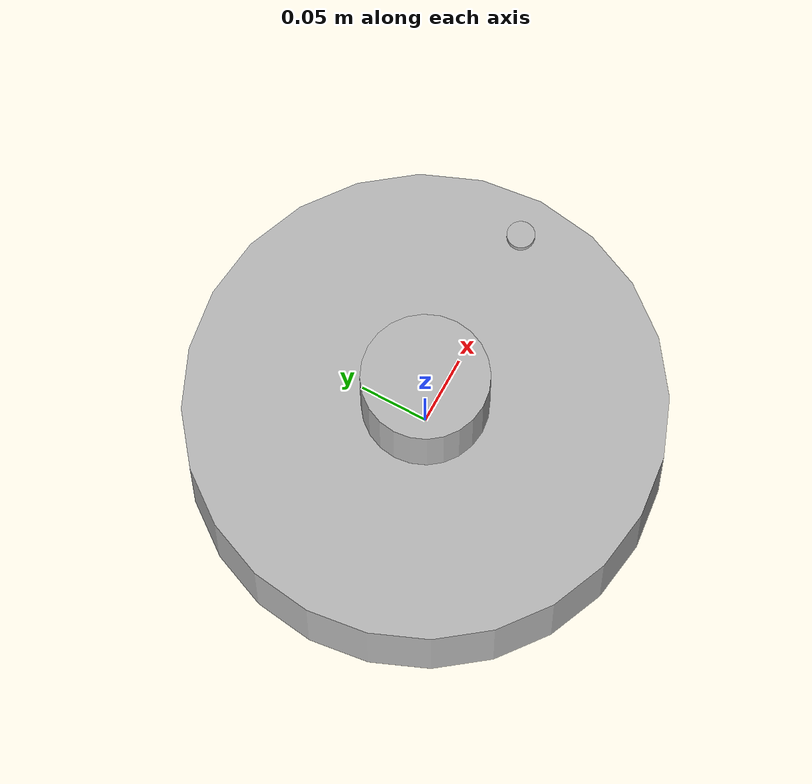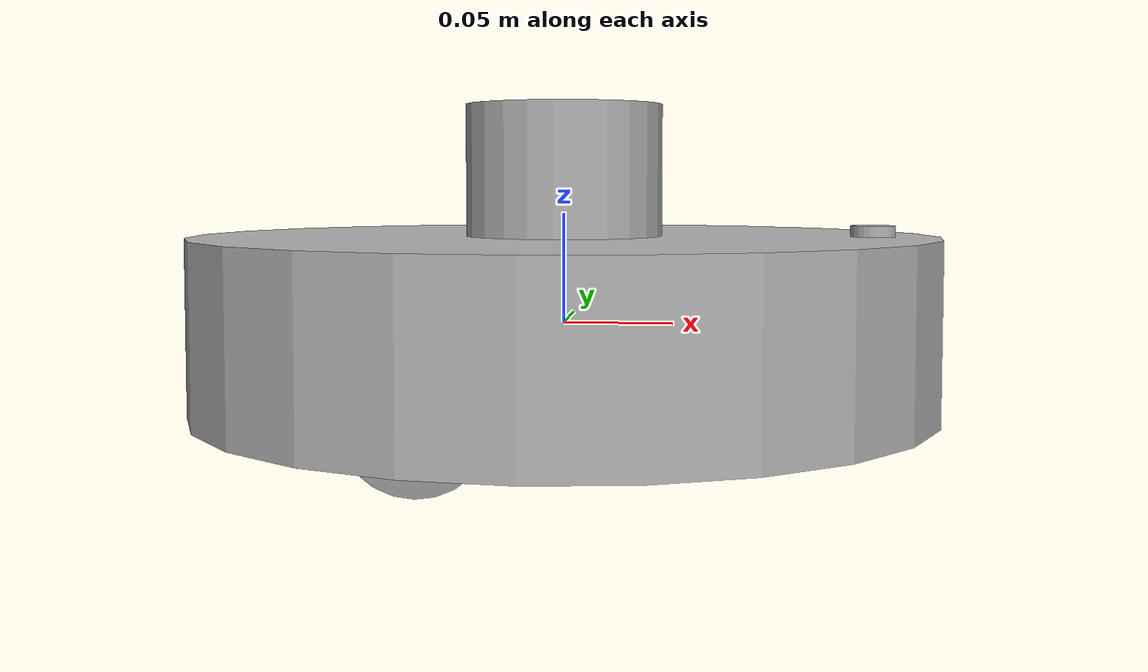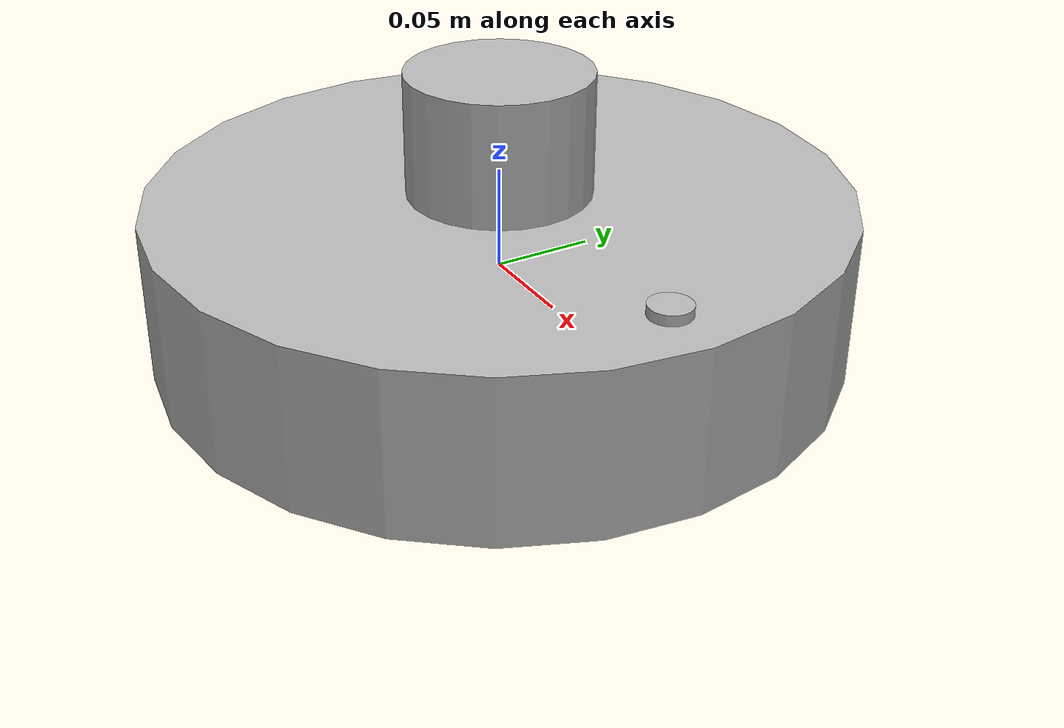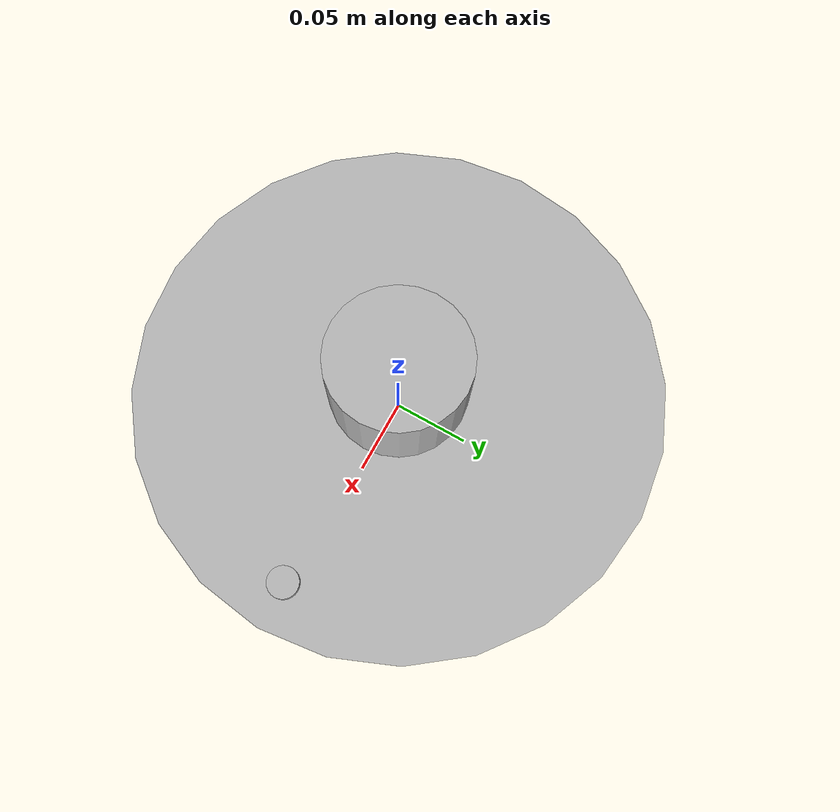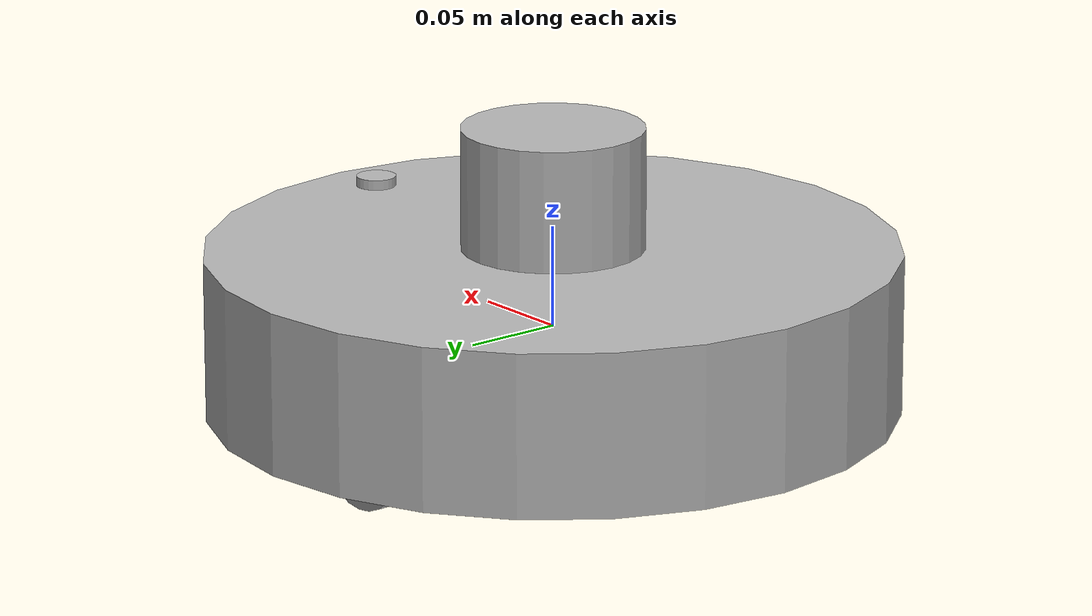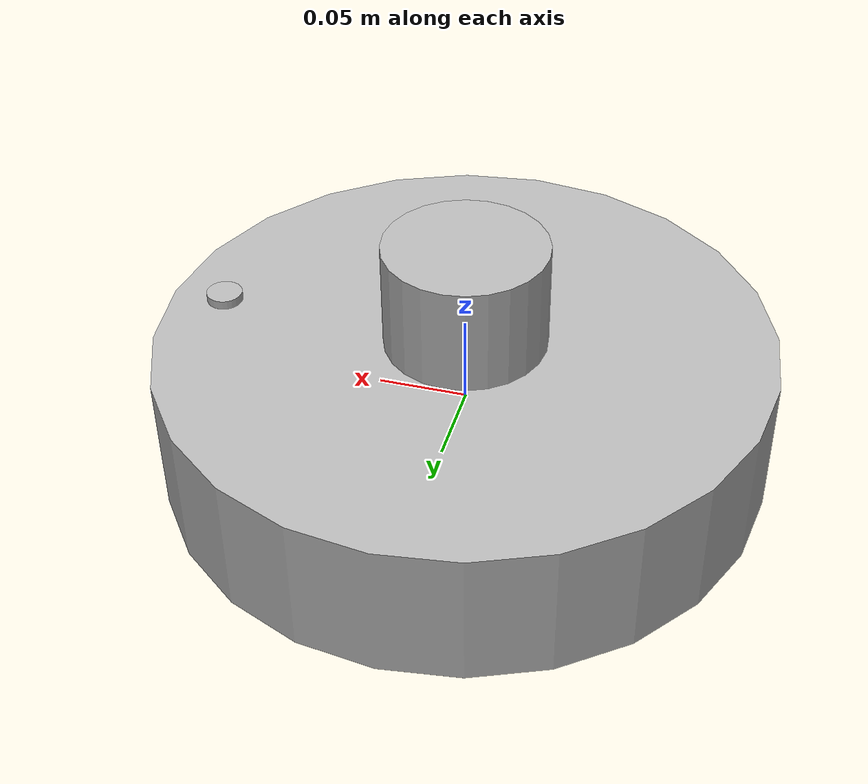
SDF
<sdf version='1.5'>
  <model name='iRobot'>
    <link name='base_link'>
      <pose>0 0 0 0 -0 0</pose>
      <inertial>
        <pose>5.99819e-06 0 4.9985e-08 0 -0 0</pose>
        <mass>10.003</mass>
        <inertia>
          <ixx>0.425054</ixx>
          <ixy>0</ixy>
          <ixz>-7.2e-06</ixz>
          <iyy>0.425037</iyy>
          <iyz>-4.08016e-18</iyz>
          <izz>0.850074</izz>
        </inertia>
      </inertial>
      <collision name='base_link_collision'>
        <pose>0 0 0 0 -0 0</pose>
        <geometry>
          <cylinder>
            <length>0.08</length>
            <radius>0.17</radius>
          </cylinder>
        </geometry>
      </collision>
      <collision name='base_link_collision_base_link_1'>
        <pose>0.14 0 0.04 0 -0 0</pose>
        <geometry>
          <cylinder>
            <length>0.01</length>
            <radius>0.01</radius>
          </cylinder>
        </geometry>
      </collision>
      <collision name='base_link_collision_base_link_2'>
        <pose>-0.04 0.14 -0.02 -1.5708 0 0</pose>
        <geometry>
          <cylinder>
            <length>0.02</length>
            <radius>0.0025</radius>
          </cylinder>
        </geometry>
      </collision>
      <collision name='base_link_collision_base_link_3'>
        <pose>-0.04 -0.14 -0.02 -1.5708 0 0</pose>
        <geometry>
          <cylinder>
            <length>0.02</length>
            <radius>0.0025</radius>
          </cylinder>
        </geometry>
      </collision>
      <collision name='base_link_collision_base_link_4'>
        <pose>0 0 0.05 0 -0 0</pose>
        <geometry>
          <box>
            <size>0.1 0.1 0.1</size>
          </box>
        </geometry>
      </collision>
      <visual name='base_link_visual'>
        <pose>0 0 0 0 -0 0</pose>
        <geometry>
          <cylinder>
            <length>0.08</length>
            <radius>0.17</radius>
          </cylinder>
        </geometry>
      </visual>
      <visual name='base_link_visual_base_link_1'>
        <pose>0.14 0 0.04 0 -0 0</pose>
        <geometry>
          <cylinder>
            <length>0.01</length>
            <radius>0.01</radius>
          </cylinder>
        </geometry>
      </visual>
      <visual name='base_link_visual_base_link_2'>
        <pose>-0.04 0.14 -0.02 -1.5708 0 0</pose>
        <geometry>
          <cylinder>
            <length>0.02</length>
            <radius>0.0025</radius>
          </cylinder>
        </geometry>
      </visual>
      <visual name='base_link_visual_base_link_3'>
        <pose>-0.04 -0.14 -0.02 -1.5708 0 0</pose>
        <geometry>
          <cylinder>
            <length>0.02</length>
            <radius>0.0025</radius>
          </cylinder>
        </geometry>
      </visual>
      <visual name='base_link_visual_base_link_4'>
        <pose>0 0 0.05 0 -0 0</pose>
        <geometry>
          <cylinder>
            <length>0.1</length>
            <radius>0.045</radius>
          </cylinder>
        </geometry>
      </visual>
      <velocity_decay/>
      <velocity_decay/>
      <gravity>1</gravity>
      <gravity>1</gravity>
      <velocity_decay/>
      <self_collide>0</self_collide>
      <sensor name='head_hokuyo_sensor' type='ray'>
        <visualize>1</visualize>
        <update_rate>40</update_rate>
        <ray>
          <scan>
            <horizontal>
              <samples>720</samples>
              <resolution>1</resolution>
              <min_angle>-1.5708</min_angle>
              <max_angle>1.5708</max_angle>
            </horizontal>
          </scan>
          <range>
            <min>0.08</min>
            <max>5</max>
            <resolution>0.01</resolution>
          </range>
        </ray>
        <plugin name='gazebo_ros_head_hokuyo_controller' filename='libgazebo_ros_laser.so'>
          <robotNamespace/>
          <topicName>laser_scan</topicName>
          <frameName>hokuyo_laser_link</frameName>
        </plugin>
        <pose>0 0 0.05 0 -0 0</pose>
      </sensor>
    </link>
    <link name='left_wheel_link'>
      <pose>-0.04 0.14 -0.02 0 -0 0</pose>
      <inertial>
        <pose>0 0.01 0 -1.5708 0 0</pose>
        <mass>0.5</mass>
        <inertia>
          <ixx>0.00375</ixx>
          <ixy>0</ixy>
          <ixz>0</ixz>
          <iyy>0.00375</iyy>
          <iyz>0</iyz>
          <izz>0.00125</izz>
        </inertia>
      </inertial>
      <collision name='left_wheel_link_collision'>
        <pose>0 0 0 -1.5708 0 0</pose>
        <geometry>
          <cylinder>
            <length>0.02</length>
            <radius>0.03</radius>
          </cylinder>
        </geometry>
        <max_contacts>1</max_contacts>
        <surface>
          <contact>
            <ode>
              <kp>1e+07</kp>
              <kd>1</kd>
              <min_depth>0.0001</min_depth>
            </ode>
          </contact>
          <friction>
            <ode>
              <mu>50</mu>
              <mu2>10</mu2>
              <fdir1>1 0 0</fdir1>
            </ode>
          </friction>
        </surface>
      </collision>
      <visual name='left_wheel_link_visual'>
        <pose>0 0 0 -1.5708 0 0</pose>
        <geometry>
          <cylinder>
            <length>0.02</length>
            <radius>0.03</radius>
          </cylinder>
        </geometry>
        <material>
          <script>
            <name>Gazebo/Grey</name>
            <uri>__default__</uri>
          </script>
        </material>
      </visual>
      <gravity>1</gravity>
      <velocity_decay/>
      <self_collide>0</self_collide>
      <gravity>1</gravity>
    </link>
    <joint name='left_wheel_rot_joint' type='revolute'>
      <child>left_wheel_link</child>
      <parent>base_link</parent>
      <axis>
        <xyz>0 1 0</xyz>
        <limit>
          <lower>-1e+16</lower>
          <upper>1e+16</upper>
        </limit>
        <dynamics>
          <spring_reference>0</spring_reference>
          <spring_stiffness>0</spring_stiffness>
        </dynamics>
        <use_parent_model_frame>1</use_parent_model_frame>
      </axis>
    </joint>
    <link name='right_wheel_link'>
      <pose>-0.04 -0.14 -0.02 0 -0 0</pose>
      <inertial>
        <pose>0 0.01 0 -1.5708 0 0</pose>
        <mass>0.5</mass>
        <inertia>
          <ixx>0.00375</ixx>
          <ixy>0</ixy>
          <ixz>0</ixz>
          <iyy>0.00375</iyy>
          <iyz>0</iyz>
          <izz>0.00125</izz>
        </inertia>
      </inertial>
      <collision name='right_wheel_link_collision'>
        <pose>0 0 0 -1.5708 0 0</pose>
        <geometry>
          <cylinder>
            <length>0.02</length>
            <radius>0.03</radius>
          </cylinder>
        </geometry>
        <max_contacts>1</max_contacts>
        <surface>
          <contact>
            <ode>
              <kp>1e+07</kp>
              <kd>1</kd>
              <min_depth>0.0001</min_depth>
            </ode>
          </contact>
          <friction>
            <ode>
              <mu>50</mu>
              <mu2>10</mu2>
              <fdir1>1 0 0</fdir1>
            </ode>
          </friction>
        </surface>
      </collision>
      <visual name='right_wheel_link_visual'>
        <pose>0 0 0 -1.5708 0 0</pose>
        <geometry>
          <cylinder>
            <length>0.02</length>
            <radius>0.03</radius>
          </cylinder>
        </geometry>
        <material>
          <script>
            <name>Gazebo/Grey</name>
            <uri>__default__</uri>
          </script>
        </material>
      </visual>
      <gravity>1</gravity>
      <velocity_decay/>
      <self_collide>0</self_collide>
      <gravity>1</gravity>
    </link>
    <joint name='right_wheel_rot_joint' type='revolute'>
      <child>right_wheel_link</child>
      <parent>base_link</parent>
      <axis>
        <xyz>0 1 0</xyz>
        <limit>
          <lower>-1e+16</lower>
          <upper>1e+16</upper>
        </limit>
        <dynamics>
          <spring_reference>0</spring_reference>
          <spring_stiffness>0</spring_stiffness>
        </dynamics>
        <use_parent_model_frame>1</use_parent_model_frame>
      </axis>
    </joint>
    <link name='sphere'>
      <pose>0.14 0 -0.04 0 -0 0</pose>
      <inertial>
        <pose>0 0 0 0 -0 0</pose>
        <mass>0.3</mass>
        <inertia>
          <ixx>0.0012</ixx>
          <ixy>0</ixy>
          <ixz>0</ixz>
          <iyy>0.0012</iyy>
          <iyz>0</iyz>
          <izz>0.0012</izz>
        </inertia>
      </inertial>
      <collision name='sphere_collision'>
        <pose>0 0 0 0 -0 0</pose>
        <geometry>
          <sphere>
            <radius>0.01</radius>
          </sphere>
        </geometry>
        <max_contacts>1</max_contacts>
        <surface>
          <contact>
            <ode>
              <kp>1e+07</kp>
              <kd>1</kd>
              <min_depth>0.0001</min_depth>
            </ode>
          </contact>
          <friction>
            <ode>
              <mu>0</mu>
              <mu2>0</mu2>
              <fdir1>1 0 0</fdir1>
            </ode>
          </friction>
        </surface>
      </collision>
      <visual name='sphere_visual'>
        <pose>0 0 0 0 -0 0</pose>
        <geometry>
          <sphere>
            <radius>0.01</radius>
          </sphere>
        </geometry>
        <material>
          <script>
            <name>Gazebo/Grey</name>
            <uri>__default__</uri>
          </script>
        </material>
      </visual>
      <velocity_decay/>
      <gravity>1</gravity>
      <gravity>1</gravity>
      <velocity_decay/>
      <self_collide>0</self_collide>
    </link>
    <joint name='sphere_joint' type='revolute'>
      <child>sphere</child>
      <parent>base_link</parent>
      <axis>
        <xyz>0 0 1</xyz>
        <limit>
          <lower>0</lower>
          <upper>0</upper>
          <effort>100</effort>
          <velocity>100</velocity>
        </limit>
        <dynamics>
          <spring_reference>0</spring_reference>
          <spring_stiffness>0</spring_stiffness>
        </dynamics>
        <use_parent_model_frame>1</use_parent_model_frame>
      </axis>
    </joint>
    <static>0</static>
    <plugin name='differential_drive_controller' filename='libgazebo_ros_diff_drive.so'>
      <rosDebugLevel>Debug</rosDebugLevel>
      <publishWheelTF>false</publishWheelTF>
      <publishWheelJointState>true</publishWheelJointState>
      <alwaysOn>true</alwaysOn>
      <leftJoint>left_wheel_rot_joint</leftJoint>
      <rightJoint>right_wheel_rot_joint</rightJoint>
      <wheelSeparation>0.32</wheelSeparation>
      <wheelDiameter>0.14</wheelDiameter>
      <torque>20</torque>
      <wheelAcceleration>1.8</wheelAcceleration>
      <commandTopic>cmd_vel</commandTopic>
      <odometryTopic>odom</odometryTopic>
      <odometryFrame>odom</odometryFrame>
      <odometrySource>world</odometrySource>
      <robotBaseFrame>base_link</robotBaseFrame>
      <updateRate>10.0</updateRate>
    </plugin>
    <plugin name='joint_state_publisher' filename='libgazebo_ros_joint_state_publisher.so'>
      <jointName>left_wheel_rot_joint, right_wheel_rot_joint</jointName>
      <updateRate>10.0</updateRate>
      <alwaysOn>true</alwaysOn>
    </plugin>
    <plugin name='imu_plugin' filename='libgazebo_ros_imu.so'>
      <bodyName>base_link</bodyName>
      <updateRate>100.0</updateRate>
      <topicName>imu_data</topicName>
      <serviceName>imu_service</serviceName>
      <gaussianNoise>0.1</gaussianNoise>
      <xyzOffset>0 0 0</xyzOffset>
      <rpyOffset>0 0 0</rpyOffset>
    </plugin>
  </model>
</sdf>
